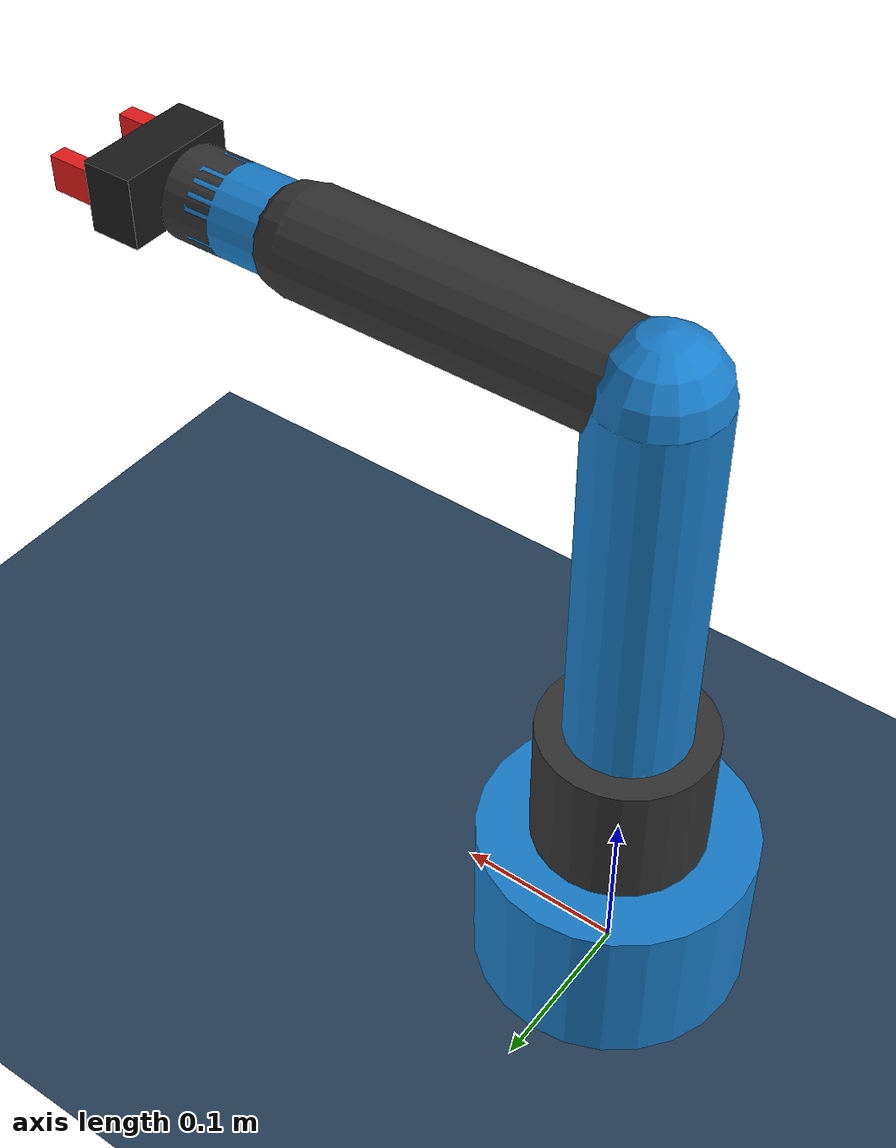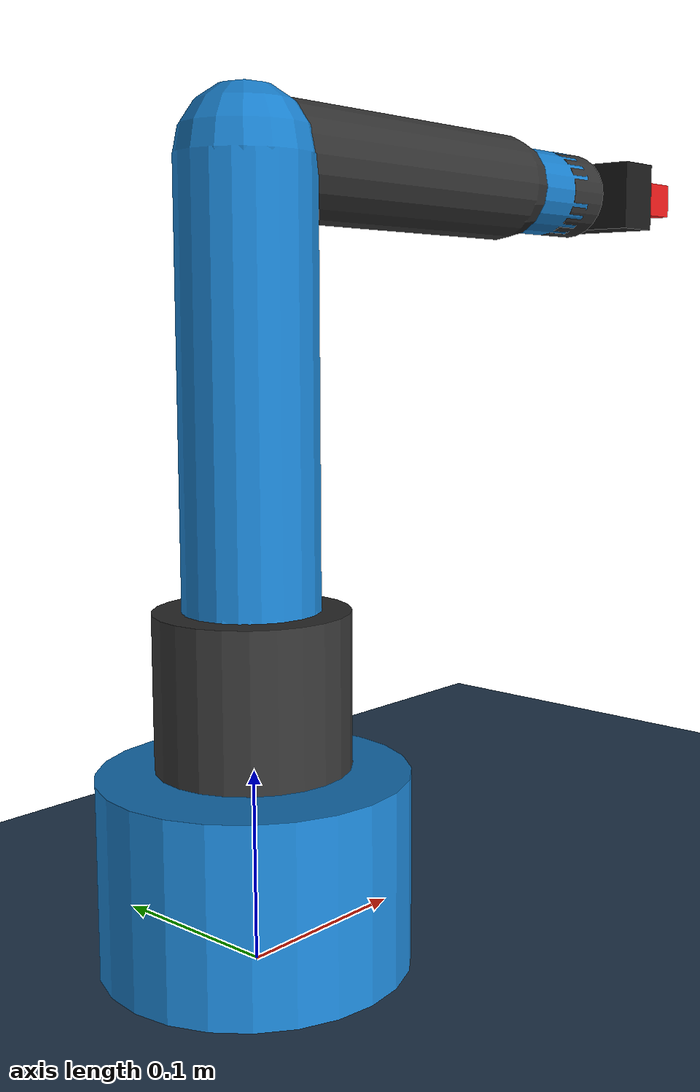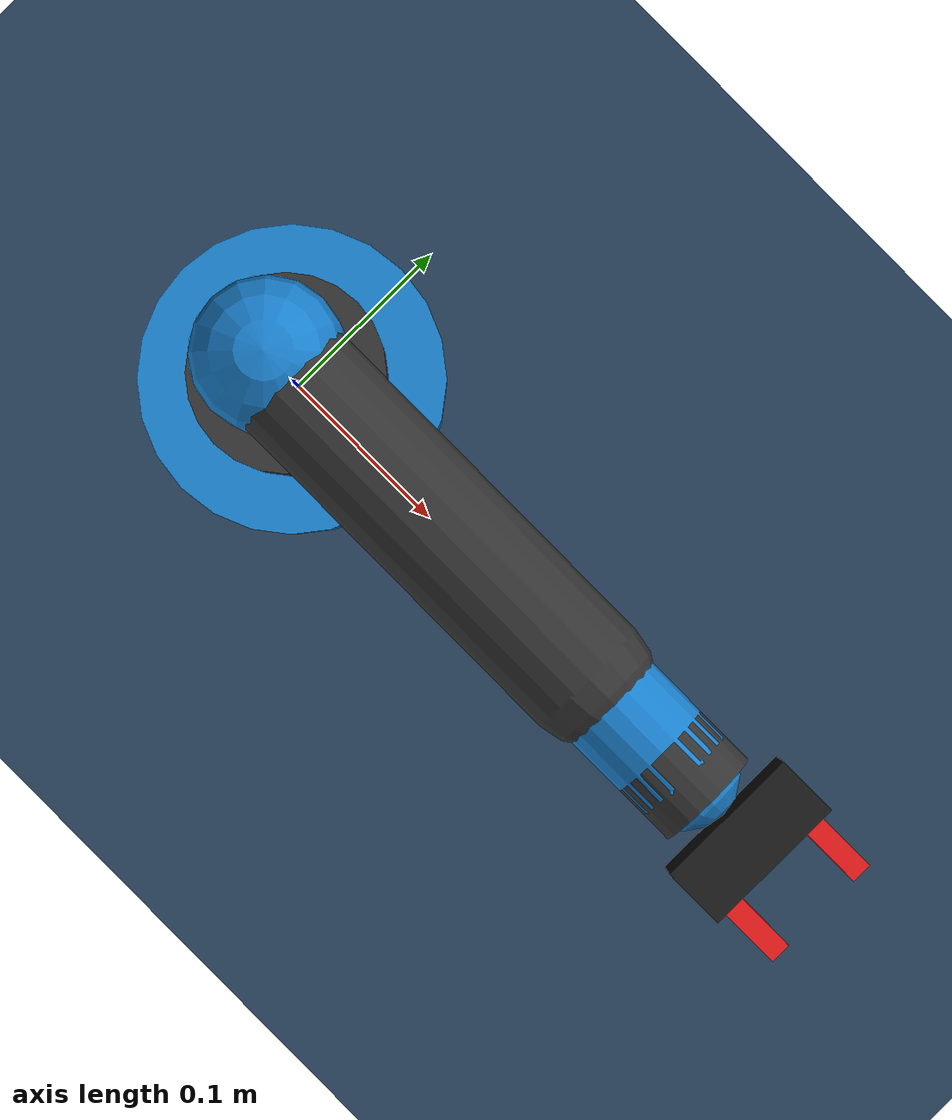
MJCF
<mujoco model="niryo_ned2">
    <compiler angle="radian" coordinate="local"/>
    <option gravity="0 0 0"/>

    <asset>
        <texture name="grid" type="2d" builtin="checker" rgb1=".1 .2 .3" rgb2=".2 .3 .4" width="512" height="512"/>
        <material name="grid" texture="grid" texrepeat="1 1" texuniform="true"/>
    </asset>

    <worldbody>
        <light pos="0 0 3" dir="0 0 -1" directional="true"/>
        <geom name="floor" size="0 0 .05" type="plane" material="grid"/>

        <body name="base_link" pos="0 0 0">
            <geom name="base_geom" type="cylinder" size="0.08 0.05" pos="0 0 0.05" rgba="0.1 0.5 0.8 1"/>

            <body name="shoulder_link" pos="0 0 0.103">
                <joint name="joint_1" type="hinge" axis="0 0 1" range="-2.949 2.949"/>
                <geom type="cylinder" size="0.05 0.04" pos="0 0 0.04" rgba="0.2 0.2 0.2 1"/>

                <body name="arm_link" pos="0 0 0.08">
                    <joint name="joint_2" type="hinge" axis="0 -1 0" range="-1.83 0.61"/>
                    <geom type="capsule" size="0.035" fromto="0 0 0 0 0 0.221" rgba="0.1 0.5 0.8 1"/>

                    <body name="forearm_link" pos="0 0 0.221">
                        <joint name="joint_3" type="hinge" axis="0 -1 0" range="-2.68 3.14"/>
                        <geom type="capsule" size="0.03" fromto="0 0 0 0.201 0 0" rgba="0.2 0.2 0.2 1"/>

                        <body name="wrist_link" pos="0.201 0 0">
                            <joint name="joint_4" type="hinge" axis="1 0 0" range="-2.089 2.089"/>
                            <geom type="capsule" size="0.025" fromto="0 0 0 0.06 0 0" rgba="0.1 0.5 0.8 1"/>

                            <body name="wrist_flex_link" pos="0.06 0 0">
                                <joint name="joint_5" type="hinge" axis="0 -1 0" range="-1.919 1.922"/>
                                <geom type="cylinder" size="0.025 0.015" quat="0.7071 0 0.7071 0" rgba="0.2 0.2 0.2 1"/>

                                <body name="tool_link" pos="0.04 0 0">
                                    <joint name="joint_6" type="hinge" axis="1 0 0" range="-2.53 2.53"/>
                                    <geom type="box" size="0.015 0.035 0.02" rgba="0.1 0.1 0.1 1"/>

                                    <body name="left_finger" pos="0.015 0.025 0">
                                        <joint name="joint_base_to_left_finger" type="slide" axis="0 -1 0" range="0 0.02"/>
                                        <geom type="box" size="0.02 0.005 0.01" pos="0.01 0 0" rgba="0.9 0.1 0.1 1"/>
                                    </body>

                                    <body name="right_finger" pos="0.015 -0.025 0">
                                        <joint name="joint_base_to_right_finger" type="slide" axis="0 1 0" range="0 0.02"/>
                                        <geom type="box" size="0.02 0.005 0.01" pos="0.01 0 0" rgba="0.9 0.1 0.1 1"/>
                                    </body>
                                </body>
                            </body>
                        </body>
                    </body>
                </body>
            </body>
        </body>
    </worldbody>
</mujoco>
